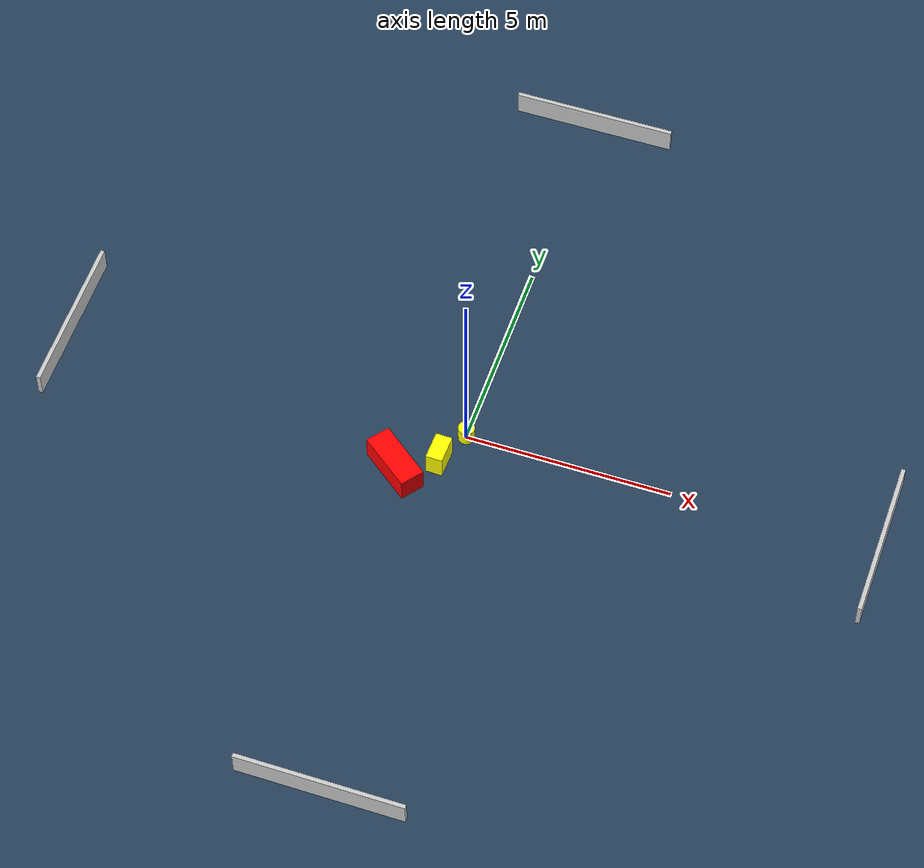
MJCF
<?xml version="1.0" ?>
<mujoco model="generated_environment">
  <option timestep="0.01" integrator="RK4" cone="elliptic"/>
  <default>
    <geom density="1"/>
  </default>
  <asset>
    <texture builtin="gradient" height="3072" name="skybox" rgb1="0.3 0.5 0.7" rgb2="0 0 0" type="skybox" width="512"/>
    <texture builtin="checker" height="300" name="groundplane" rgb1="0.2 0.3 0.4" rgb2="0.1 0.2 0.3" type="2d" width="300"/>
    <material name="groundplane" reflectance="0.2" texrepeat="5 5" texture="groundplane"/>
  </asset>
  <worldbody>
    <light dir="0 0 -1" directional="true" pos="0 0 1.5"/>
    <geom condim="3" friction="0.5 0.005 0.001" material="groundplane" name="floor" pos="0 0 0" size="0 0 0.05" type="plane"/>
    <body name="walls">
      <geom name="wall_1" condim="4" pos="-10.0 0.0 0.3" rgba="0.800000011920929 0.800000011920929 0.800000011920929 1.0" size="0.05 2.0 0.3" type="box"/>
      <geom name="wall_2" condim="4" pos="10.0 0.0 0.3" rgba="0.800000011920929 0.800000011920929 0.800000011920929 1.0" size="0.05 2.0 0.3" type="box"/>
      <geom name="wall_3" condim="4" pos="0.0 -10.0 0.3" rgba="0.800000011920929 0.800000011920929 0.800000011920929 1.0" size="2.0 0.05 0.3" type="box"/>
      <geom name="wall_4" condim="4" pos="0.0 10.0 0.3" rgba="0.800000011920929 0.800000011920929 0.800000011920929 1.0" size="2.0 0.05 0.3" type="box"/>
    </body>
    <body name="robot">
      <joint name="joint_x" type="slide" pos="0 0 0" axis="1 0 0"/>
      <joint name="joint_y" type="slide" pos="0 0 0" axis="0 1 0"/>
      <geom name="robot" type="cylinder" pos="0.0 0.0 0.2" size="0.2 0.2 0.0" mass="5.0" friction="1.0 0.005 0.0001" condim="4" rgba="1.0 1.0 0.0 1.0"/>
    </body>
    <body name="obstacle_1_movable">
      <geom name="obstacle_1_movable" condim="4" pos="-0.38471471253628586 -0.860129509593271 0.3" euler="0 0 268.2935851199662" friction="0.0 0.005 0.001" rgba="1.0 1.0 0.0 1.0" size="0.3476447135540819 0.20044436918362185 0.3" type="box" mass="0.1"/>
      <joint type="free"/>
    </body>
    <body name="obstacle_2_static">
      <geom name="obstacle_2_static" condim="4" pos="-1.275636670067591 -1.4200815663474389 0.3" euler="0 0 52.269521479919426" friction="0.0 0.005 0.001" rgba="1.0 0.0 0.0 1.0" size="0.30478337529220556 0.7455555817181239 0.3" type="box"/>
    </body>
  </worldbody>
  <actuator>
    <motor name="actuator_x" joint="joint_x" gear="1" ctrlrange="-1 1"/>
    <motor name="actuator_y" joint="joint_y" gear="1" ctrlrange="-1 1"/>
  </actuator>
</mujoco>
